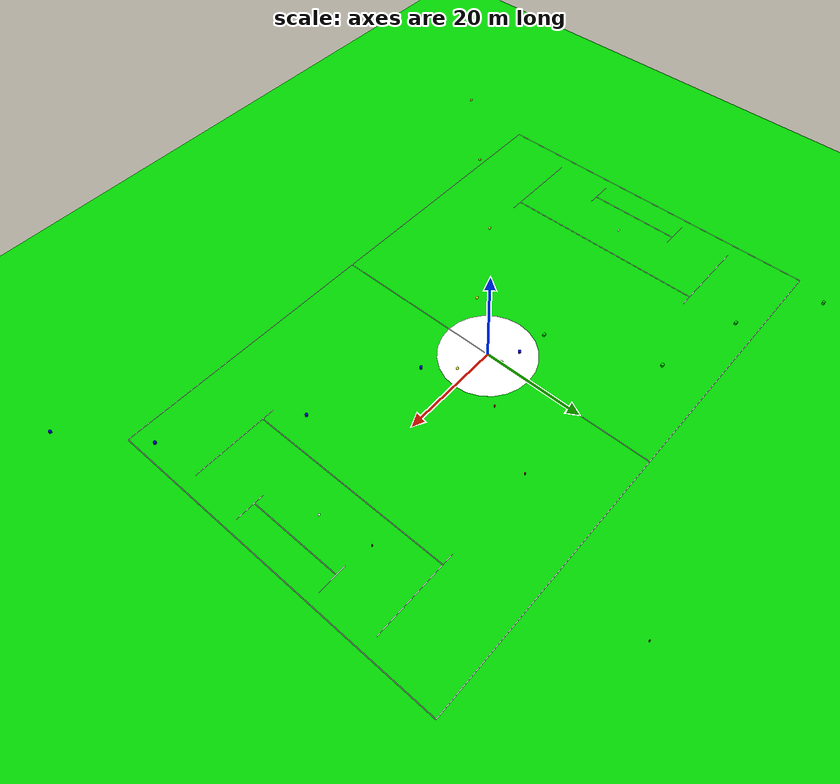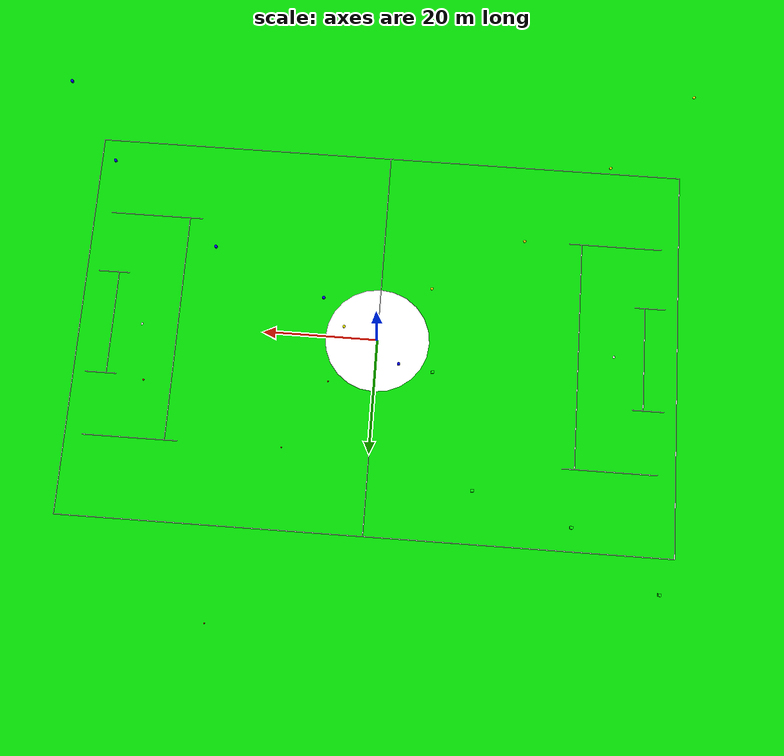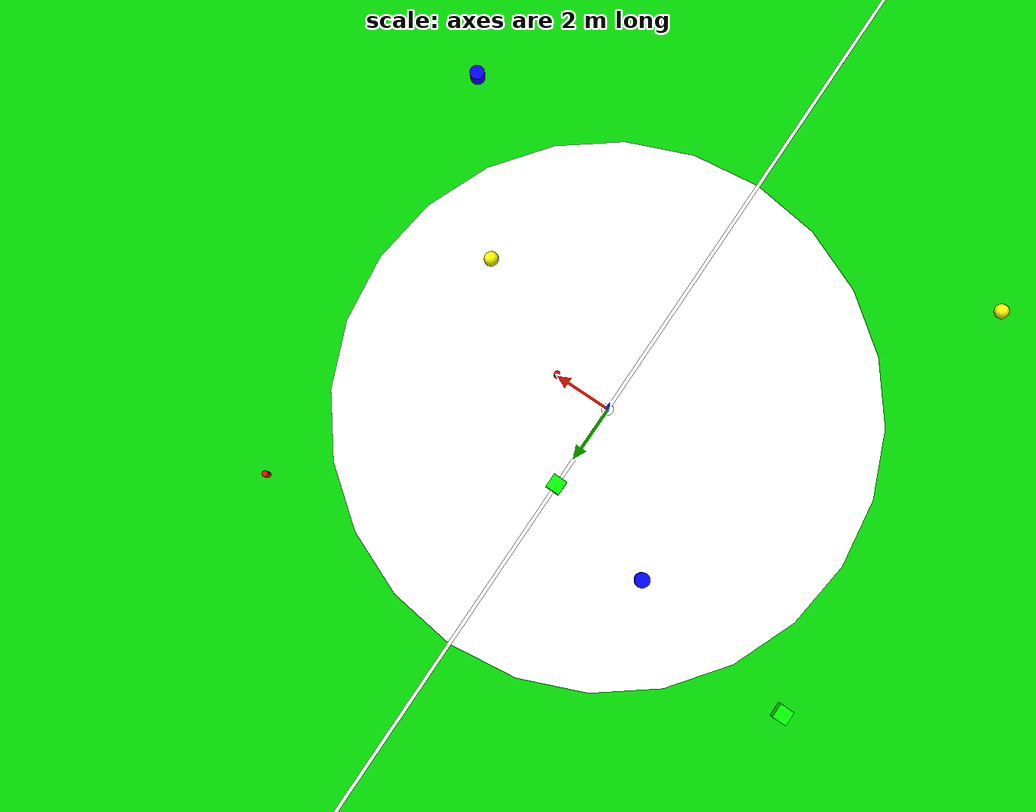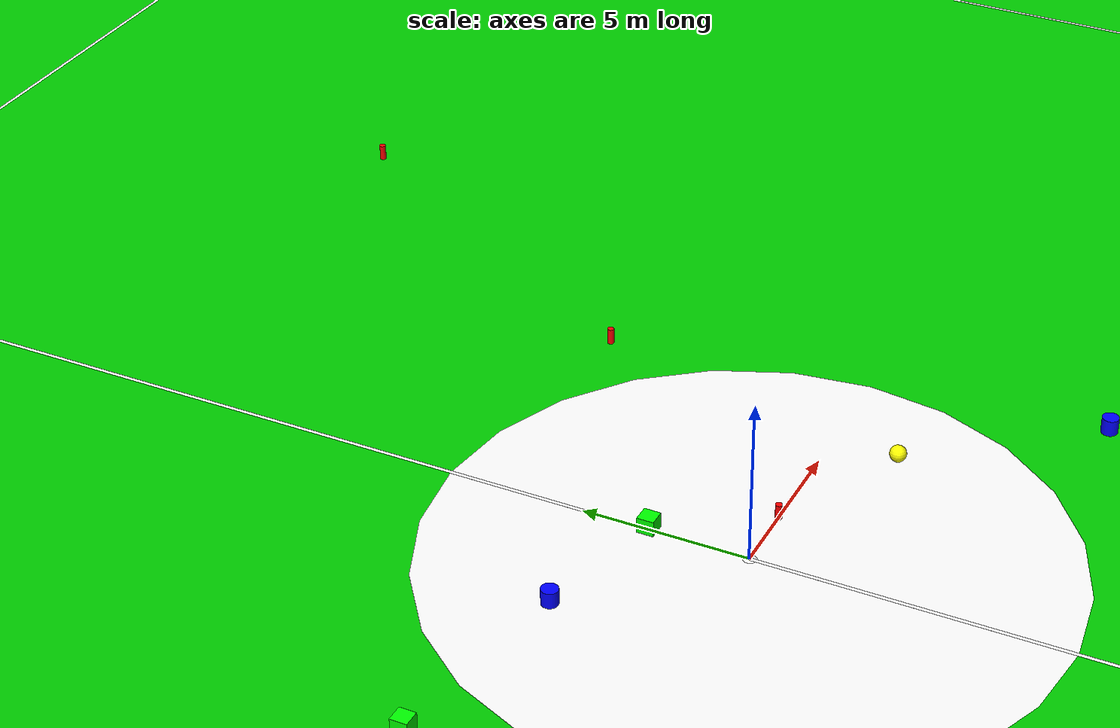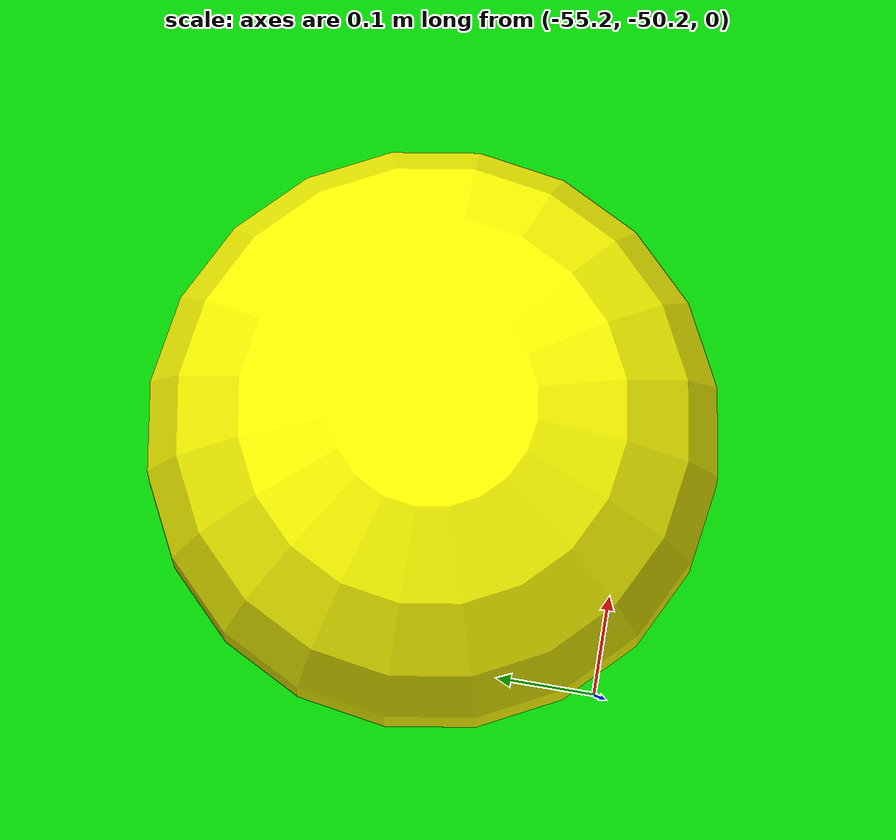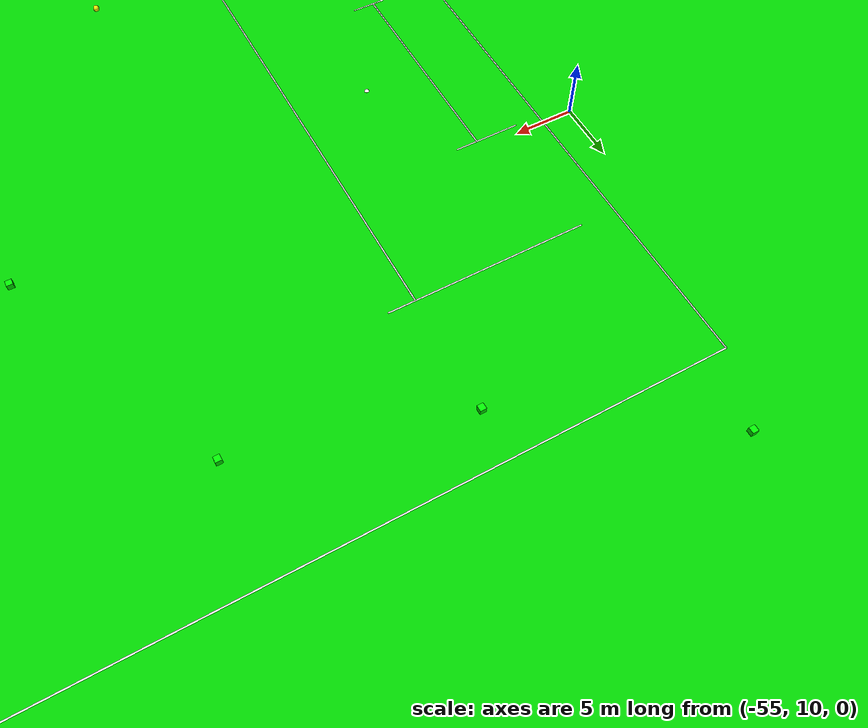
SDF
<?xml version="1.0" ?>
<sdf version="1.9">
  <world name="ros_gz">
    <physics name="1ms" type="ode">
      <max_step_size>0.001</max_step_size>
      <real_time_factor>1.0</real_time_factor>
    </physics>

    <!-- Spherical coordinates for GPS reference -->
    <spherical_coordinates>
      <surface_model>EARTH_WGS84</surface_model>
      <world_frame_orientation>ENU</world_frame_orientation>
      <latitude_deg>-22.8567</latitude_deg>
      <longitude_deg>-47.0589</longitude_deg>
      <elevation>580.0</elevation>
      <heading_deg>0.0</heading_deg>
    </spherical_coordinates>

    <plugin
      filename="ignition-gazebo-physics-system"
      name="ignition::gazebo::systems::Physics">
    </plugin>
    <plugin
      filename="ignition-gazebo-user-commands-system"
      name="ignition::gazebo::systems::UserCommands">
    </plugin>
    <plugin
      filename="ignition-gazebo-navsat-system"
      name="ignition::gazebo::systems::NavSat">
    </plugin>
    <plugin
      filename="ignition-gazebo-sensors-system"
      name="ignition::gazebo::systems::Sensors">
      <render_engine>ogre2</render_engine>
    </plugin>
    <plugin
      filename="ignition-gazebo-imu-system"
      name="gz::sim::systems::Imu">
    </plugin>
    <plugin
      filename="ignition-gazebo-magnetometer-system"
      name="gz::sim::systems::Magnetometer">
    </plugin>
    <plugin
      filename="ignition-gazebo-scene-broadcaster-system"
      name="ignition::gazebo::systems::SceneBroadcaster">
    </plugin>
    <plugin
      filename="gz-sim-physics-system"
      name="gz::sim::systems::Physics">
    </plugin>

    <gui fullscreen="0">

      <!-- 3D scene -->
      <plugin filename="GzScene3D" name="3D View">
        <ignition-gui>
          <title>3D View</title>
          <property type="bool" key="showTitleBar">false</property>
          <property type="string" key="state">docked</property>
        </ignition-gui>

        <engine>ogre2</engine>
        <scene>scene</scene>
        <ambient_light>0.4 0.4 0.4</ambient_light>
        <background_color>0.8 0.8 0.8</background_color>
        <camera_pose>-8 0 8 0 0.8 0</camera_pose>
      </plugin>

      <!-- World control -->
      <plugin filename="WorldControl" name="World control">
        <ignition-gui>
          <title>World control</title>
          <property type="bool" key="showTitleBar">false</property>
          <property type="bool" key="resizable">false</property>
          <property type="double" key="height">72</property>
          <property type="double" key="width">121</property>
          <property type="double" key="z">1</property>

          <property type="string" key="state">floating</property>
          <anchors target="3D View">
            <line own="left" target="left"/>
            <line own="bottom" target="bottom"/>
          </anchors>
        </ignition-gui>

        <play_pause>true</play_pause>
        <step>true</step>
        <start_paused>true</start_paused>
        <service>/world/ros_gz/control</service>
        <stats_topic>/world/ros_gz/stats</stats_topic>

      </plugin>

      <!-- World statistics -->
      <plugin filename="WorldStats" name="World stats">
        <ignition-gui>
          <title>World stats</title>
          <property type="bool" key="showTitleBar">false</property>
          <property type="bool" key="resizable">false</property>
          <property type="double" key="height">110</property>
          <property type="double" key="width">290</property>
          <property type="double" key="z">1</property>

          <property type="string" key="state">floating</property>
          <anchors target="3D View">
            <line own="right" target="right"/>
            <line own="bottom" target="bottom"/>
          </anchors>
        </ignition-gui>

        <sim_time>true</sim_time>
        <real_time>true</real_time>
        <real_time_factor>true</real_time_factor>
        <iterations>true</iterations>
        <topic>/world/ros_gz/stats</topic>
      </plugin>

      <plugin filename="ImageDisplay" name="Image Display">
        <ignition-gui>
          <title>Default: depth</title>
          <property key="width" type="double">400</property>
          <property key="height" type="double">315</property>
          <property key="state" type="string">floating</property>
          <anchors target="3D View">
            <line own="left" target="left"/>
            <line own="bottom" target="bottom"/>
          </anchors>
        </ignition-gui>
        <topic>kinect_depth/image</topic>
        <topic_picker>false</topic_picker>
      </plugin>

      <plugin filename="ImageDisplay" name="Image Display">
        <ignition-gui>
          <title>Default: RGB</title>
          <property key="width" type="double">400</property>
          <property key="height" type="double">315</property>
          <property key="state" type="string">floating</property>
          <anchors target="3D View">
            <line own="right" target="right"/>
            <line own="bottom" target="bottom"/>
          </anchors>
        </ignition-gui>
        <topic>kinect_rgb/image</topic>
        <topic_picker>false</topic_picker>
      </plugin>
    </gui>

    <light type="directional" name="sun">
      <cast_shadows>true</cast_shadows>
      <pose>0 0 10 0 0 0</pose>
      <diffuse>0.8 0.8 0.8 1</diffuse>
      <specular>0.2 0.2 0.2 1</specular>
      <attenuation>
        <range>1000</range>
        <constant>0.9</constant>
        <linear>0.01</linear>
        <quadratic>0.001</quadratic>
      </attenuation>
      <direction>-0.5 0.1 -0.9</direction>
    </light>

    <!-- FIFA Standard Football Field -->
    <model name="FIFA Football Field">
      <static>true</static>
      <link name="field">
        <pose>0 0 0.01 0 0 0</pose>
        <collision name="collision">
          <geometry>
            <plane>
              <normal>0 0 1</normal>
              <size>105 68</size>
            </plane>
          </geometry>
          <surface>
            <friction>
              <ode>
                <mu>100</mu>
                <mu2>50</mu2>
              </ode>
            </friction>
          </surface>
        </collision>
        <visual name="grass_field">
          <cast_shadows>false</cast_shadows>
          <geometry>
            <plane>
              <normal>0 0 1</normal>
              <size>105 68</size>
            </plane>
          </geometry>
          <material>
            <ambient>0 0.6 0 1</ambient>
            <diffuse>0 0.8 0 1</diffuse>
          </material>
        </visual>
        <!-- Sidelines -->
        <visual name="sideline_1">
          <pose>0 34 0.011 0 0 0</pose>
          <cast_shadows>false</cast_shadows>
          <geometry>
            <plane>
              <normal>0 0 1</normal>
              <size>105 0.12</size>
            </plane>
          </geometry>
          <material>
            <ambient>1 1 1 1</ambient>
            <diffuse>1 1 1 1</diffuse>
          </material>
        </visual>
        <visual name="sideline_2">
          <pose>0 -34 0.011 0 0 0</pose>
          <cast_shadows>false</cast_shadows>
          <geometry>
            <plane>
              <normal>0 0 1</normal>
              <size>105 0.12</size>
            </plane>
          </geometry>
          <material>
            <ambient>1 1 1 1</ambient>
            <diffuse>1 1 1 1</diffuse>
          </material>
        </visual>
        <!-- Goal lines -->
        <visual name="goal_line_1">
          <pose>-52.5 0 0.011 0 0 0</pose>
          <cast_shadows>false</cast_shadows>
          <geometry>
            <plane>
              <normal>0 0 1</normal>
              <size>0.12 68</size>
            </plane>
          </geometry>
          <material>
            <ambient>1 1 1 1</ambient>
            <diffuse>1 1 1 1</diffuse>
          </material>
        </visual>
        <visual name="goal_line_2">
          <pose>52.5 0 0.011 0 0 0</pose>
          <cast_shadows>false</cast_shadows>
          <geometry>
            <plane>
              <normal>0 0 1</normal>
              <size>0.12 68</size>
            </plane>
          </geometry>
          <material>
            <ambient>1 1 1 1</ambient>
            <diffuse>1 1 1 1</diffuse>
          </material>
        </visual>
        <!-- Center line -->
        <visual name="center_line">
          <pose>0 0 0.011 0 0 0</pose>
          <cast_shadows>false</cast_shadows>
          <geometry>
            <plane>
              <normal>0 0 1</normal>
              <size>0.12 68</size>
            </plane>
          </geometry>
          <material>
            <ambient>1 1 1 1</ambient>
            <diffuse>1 1 1 1</diffuse>
          </material>
        </visual>
        <!-- Center circle -->
        <visual name="center_circle">
          <pose>0 0 0.005 0 0 0</pose>
          <cast_shadows>false</cast_shadows>
          <geometry>
            <cylinder>
              <radius>9.15</radius>
              <length>0.0005</length>
            </cylinder>
          </geometry>
          <material>
            <ambient>1 1 1 1</ambient>
            <diffuse>1 1 1 1</diffuse>
          </material>
        </visual>
        <!-- Center point -->
        <visual name="center_point">
          <pose>0 0 0.01 0 0 0</pose>
          <cast_shadows>false</cast_shadows>
          <geometry>
            <cylinder>
              <radius>0.2</radius>
              <length>0.0005</length>
            </cylinder>
          </geometry>
          <material>
            <ambient>1 1 1 1</ambient>
            <diffuse>1 1 1 1</diffuse>
          </material>
        </visual>
        <!-- Penalty areas -->
        <visual name="penalty_area_1">
          <pose>-35.25 0 0.011 0 0 0</pose>
          <cast_shadows>false</cast_shadows>
          <geometry>
            <plane>
              <normal>0 0 1</normal>
              <size>0.12 40.3</size>
            </plane>
          </geometry>
          <material>
            <ambient>1 1 1 1</ambient>
            <diffuse>1 1 1 1</diffuse>
          </material>
        </visual>
        <visual name="penalty_area_1_top">
          <pose>-41.28 20.15 0.011 0 0 0</pose>
          <cast_shadows>false</cast_shadows>
          <geometry>
            <plane>
              <normal>0 0 1</normal>
              <size>16.5 0.12</size>
            </plane>
          </geometry>
          <material>
            <ambient>1 1 1 1</ambient>
            <diffuse>1 1 1 1</diffuse>
          </material>
        </visual>
        <visual name="penalty_area_1_bottom">
          <pose>-41.28 -20.15 0.011 0 0 0</pose>
          <cast_shadows>false</cast_shadows>
          <geometry>
            <plane>
              <normal>0 0 1</normal>
              <size>16.5 0.12</size>
            </plane>
          </geometry>
          <material>
            <ambient>1 1 1 1</ambient>
            <diffuse>1 1 1 1</diffuse>
          </material>
        </visual>
        <visual name="penalty_area_2">
          <pose>35.25 0 0.011 0 0 0</pose>
          <cast_shadows>false</cast_shadows>
          <geometry>
            <plane>
              <normal>0 0 1</normal>
              <size>0.12 40.3</size>
            </plane>
          </geometry>
          <material>
            <ambient>1 1 1 1</ambient>
            <diffuse>1 1 1 1</diffuse>
          </material>
        </visual>
        <visual name="penalty_area_2_top">
          <pose>41.28 20.15 0.011 0 0 0</pose>
          <cast_shadows>false</cast_shadows>
          <geometry>
            <plane>
              <normal>0 0 1</normal>
              <size>16.5 0.12</size>
            </plane>
          </geometry>
          <material>
            <ambient>1 1 1 1</ambient>
            <diffuse>1 1 1 1</diffuse>
          </material>
        </visual>
        <visual name="penalty_area_2_bottom">
          <pose>41.28 -20.15 0.011 0 0 0</pose>
          <cast_shadows>false</cast_shadows>
          <geometry>
            <plane>
              <normal>0 0 1</normal>
              <size>16.5 0.12</size>
            </plane>
          </geometry>
          <material>
            <ambient>1 1 1 1</ambient>
            <diffuse>1 1 1 1</diffuse>
          </material>
        </visual>
        <!-- Goal areas -->
        <visual name="goal_area_1">
          <pose>-46.75 0 0.011 0 0 0</pose>
          <cast_shadows>false</cast_shadows>
          <geometry>
            <plane>
              <normal>0 0 1</normal>
              <size>0.12 18.32</size>
            </plane>
          </geometry>
          <material>
            <ambient>1 1 1 1</ambient>
            <diffuse>1 1 1 1</diffuse>
          </material>
        </visual>
        <visual name="goal_area_1_top">
          <pose>-47.66 9.16 0.011 0 0 0</pose>
          <cast_shadows>false</cast_shadows>
          <geometry>
            <plane>
              <normal>0 0 1</normal>
              <size>5.5 0.12</size>
            </plane>
          </geometry>
          <material>
            <ambient>1 1 1 1</ambient>
            <diffuse>1 1 1 1</diffuse>
          </material>
        </visual>
        <visual name="goal_area_1_bottom">
          <pose>-47.66 -9.16 0.011 0 0 0</pose>
          <cast_shadows>false</cast_shadows>
          <geometry>
            <plane>
              <normal>0 0 1</normal>
              <size>5.5 0.12</size>
            </plane>
          </geometry>
          <material>
            <ambient>1 1 1 1</ambient>
            <diffuse>1 1 1 1</diffuse>
          </material>
        </visual>
        <visual name="goal_area_2">
          <pose>46.75 0 0.011 0 0 0</pose>
          <cast_shadows>false</cast_shadows>
          <geometry>
            <plane>
              <normal>0 0 1</normal>
              <size>0.12 18.32</size>
            </plane>
          </geometry>
          <material>
            <ambient>1 1 1 1</ambient>
            <diffuse>1 1 1 1</diffuse>
          </material>
        </visual>
        <visual name="goal_area_2_top">
          <pose>47.66 9.16 0.011 0 0 0</pose>
          <cast_shadows>false</cast_shadows>
          <geometry>
            <plane>
              <normal>0 0 1</normal>
              <size>5.5 0.12</size>
            </plane>
          </geometry>
          <material>
            <ambient>1 1 1 1</ambient>
            <diffuse>1 1 1 1</diffuse>
          </material>
        </visual>
        <visual name="goal_area_2_bottom">
          <pose>47.66 -9.16 0.011 0 0 0</pose>
          <cast_shadows>false</cast_shadows>
          <geometry>
            <plane>
              <normal>0 0 1</normal>
              <size>5.5 0.12</size>
            </plane>
          </geometry>
          <material>
            <ambient>1 1 1 1</ambient>
            <diffuse>1 1 1 1</diffuse>
          </material>
        </visual>
        <!-- Penalty spots -->
        <visual name="penalty_spot_1">
          <pose>-41.5 0 0.01 0 0 0</pose>
          <cast_shadows>false</cast_shadows>
          <geometry>
            <cylinder>
              <radius>0.2</radius>
              <length>0.0005</length>
            </cylinder>
          </geometry>
          <material>
            <ambient>1 1 1 1</ambient>
            <diffuse>1 1 1 1</diffuse>
          </material>
        </visual>
        <visual name="penalty_spot_2">
          <pose>41.5 0 0.01 0 0 0</pose>
          <cast_shadows>false</cast_shadows>
          <geometry>
            <cylinder>
              <radius>0.2</radius>
              <length>0.0005</length>
            </cylinder>
          </geometry>
          <material>
            <ambient>1 1 1 1</ambient>
            <diffuse>1 1 1 1</diffuse>
          </material>
        </visual>
      </link>
    </model>
    <!-- Objetos sortidos -->
    <model name="cone_2">
      <pose>15 20 0.25 0 0 0</pose>
      <link name="link">
      <collision name="collision">
        <geometry>
        <cylinder>
          <radius>0.1</radius>
          <length>0.5</length>
        </cylinder>
        </geometry>
      </collision>
      <visual name="visual">
        <geometry>
        <cylinder>
          <radius>0.1</radius>
          <length>0.5</length>
        </cylinder>
        </geometry>
        <material>
        <ambient>1 0 0 1</ambient>
        <diffuse>1 0 0 1</diffuse>
        </material>
      </visual>
      </link>
    </model>
    <model name="box_2">
      <pose>-18 25 0.25 0 0 0</pose>
      <link name="link">
      <collision name="collision">
        <geometry>
        <box>
          <size>0.5 0.5 0.5</size>
        </box>
        </geometry>
      </collision>
      <visual name="visual">
        <geometry>
        <box>
          <size>0.5 0.5 0.5</size>
        </box>
        </geometry>
        <material>
        <ambient>0 1 0 1</ambient>
        <diffuse>0 1 0 1</diffuse>
        </material>
      </visual>
      </link>
    </model>
    <model name="cylinder_2">
      <pose>30 -15 0.25 0 0 0</pose>
      <link name="link">
      <collision name="collision">
        <geometry>
        <cylinder>
          <radius>0.25</radius>
          <length>0.5</length>
        </cylinder>
        </geometry>
      </collision>
      <visual name="visual">
        <geometry>
        <cylinder>
          <radius>0.25</radius>
          <length>0.5</length>
        </cylinder>
        </geometry>
        <material>
        <ambient>0 0 1 1</ambient>
        <diffuse>0 0 1 1</diffuse>
        </material>
      </visual>
      </link>
    </model>
    <model name="sphere_2">
      <pose>-25 -20 0.25 0 0 0</pose>
      <link name="link">
      <collision name="collision">
        <geometry>
        <sphere>
          <radius>0.25</radius>
        </sphere>
        </geometry>
      </collision>
      <visual name="visual">
        <geometry>
        <sphere>
          <radius>0.25</radius>
        </sphere>
        </geometry>
        <material>
        <ambient>1 1 0 1</ambient>
        <diffuse>1 1 0 1</diffuse>
        </material>
      </visual>
      </link>
    </model>
    <model name="cone_3">
      <pose>40 10 0.25 0 0 0</pose>
      <link name="link">
      <collision name="collision">
        <geometry>
        <cylinder>
          <radius>0.1</radius>
          <length>0.5</length>
        </cylinder>
        </geometry>
      </collision>
      <visual name="visual">
        <geometry>
        <cylinder>
          <radius>0.1</radius>
          <length>0.5</length>
        </cylinder>
        </geometry>
        <material>
        <ambient>1 0 0 1</ambient>
        <diffuse>1 0 0 1</diffuse>
        </material>
      </visual>
      </link>
    </model>
    <model name="box_3">
      <pose>-35 30 0.25 0 0 0</pose>
      <link name="link">
      <collision name="collision">
        <geometry>
        <box>
          <size>0.5 0.5 0.5</size>
        </box>
        </geometry>
      </collision>
      <visual name="visual">
        <geometry>
        <box>
          <size>0.5 0.5 0.5</size>
        </box>
        </geometry>
        <material>
        <ambient>0 1 0 1</ambient>
        <diffuse>0 1 0 1</diffuse>
        </material>
      </visual>
      </link>
    </model>
    <model name="cylinder_3">
      <pose>50 -30 0.25 0 0 0</pose>
      <link name="link">
      <collision name="collision">
        <geometry>
        <cylinder>
          <radius>0.25</radius>
          <length>0.5</length>
        </cylinder>
        </geometry>
      </collision>
      <visual name="visual">
        <geometry>
        <cylinder>
          <radius>0.25</radius>
          <length>0.5</length>
        </cylinder>
        </geometry>
        <material>
        <ambient>0 0 1 1</ambient>
        <diffuse>0 0 1 1</diffuse>
        </material>
      </visual>
      </link>
    </model>
    <model name="sphere_3">
      <pose>-40 -35 0.25 0 0 0</pose>
      <link name="link">
      <collision name="collision">
        <geometry>
        <sphere>
          <radius>0.25</radius>
        </sphere>
        </geometry>
      </collision>
      <visual name="visual">
        <geometry>
        <sphere>
          <radius>0.25</radius>
        </sphere>
        </geometry>
        <material>
        <ambient>1 1 0 1</ambient>
        <diffuse>1 1 0 1</diffuse>
        </material>
      </visual>
      </link>
    </model>
    <model name="cone_4">
      <pose>25 50 0.25 0 0 0</pose>
      <link name="link">
      <collision name="collision">
      <geometry>
      <cylinder>
        <radius>0.1</radius>
        <length>0.5</length>
      </cylinder>
      </geometry>
      </collision>
      <visual name="visual">
      <geometry>
      <cylinder>
        <radius>0.1</radius>
        <length>0.5</length>
      </cylinder>
      </geometry>
      <material>
      <ambient>1 0 0 1</ambient>
      <diffuse>1 0 0 1</diffuse>
      </material>
      </visual>
      </link>
    </model>
    <model name="box_4">
      <pose>-50 40 0.25 0 0 0</pose>
      <link name="link">
      <collision name="collision">
      <geometry>
      <box>
        <size>0.5 0.5 0.5</size>
      </box>
      </geometry>
      </collision>
      <visual name="visual">
      <geometry>
      <box>
        <size>0.5 0.5 0.5</size>
      </box>
      </geometry>
      <material>
      <ambient>0 1 0 1</ambient>
      <diffuse>0 1 0 1</diffuse>
      </material>
      </visual>
      </link>
    </model>
    <model name="cylinder_4">
      <pose>60 -45 0.25 0 0 0</pose>
      <link name="link">
      <collision name="collision">
      <geometry>
      <cylinder>
        <radius>0.25</radius>
        <length>0.5</length>
      </cylinder>
      </geometry>
      </collision>
      <visual name="visual">
      <geometry>
      <cylinder>
        <radius>0.25</radius>
        <length>0.5</length>
      </cylinder>
      </geometry>
      <material>
      <ambient>0 0 1 1</ambient>
      <diffuse>0 0 1 1</diffuse>
      </material>
      </visual>
      </link>
    </model>
    <model name="sphere_4">
      <pose>-55 -50 0.25 0 0 0</pose>
      <link name="link">
      <collision name="collision">
      <geometry>
      <sphere>
      <radius>0.25</radius>
      </sphere>
      </geometry>
      </collision>
      <visual name="visual">
      <geometry>
      <sphere>
      <radius>0.25</radius>
      </sphere>
      </geometry>
      <material>
      <ambient>1 1 0 1</ambient>
      <diffuse>1 1 0 1</diffuse>
      </material>
      </visual>
      </link>
    </model>
    <!-- Objetos próximos da origem (2 a 10 metros) -->
    <model name="cone_near_1">
      <pose>2 0 0.25 0 0 0</pose>
      <link name="link">
      <collision name="collision">
        <geometry>
        <cylinder>
          <radius>0.1</radius>
          <length>0.5</length>
        </cylinder>
        </geometry>
      </collision>
      <visual name="visual">
        <geometry>
        <cylinder>
          <radius>0.1</radius>
          <length>0.5</length>
        </cylinder>
        </geometry>
        <material>
        <ambient>1 0 0 1</ambient>
        <diffuse>1 0 0 1</diffuse>
        </material>
      </visual>
      </link>
    </model>
    <model name="box_near_1">
      <pose>0 3 0.25 0 0 0</pose>
      <link name="link">
      <collision name="collision">
        <geometry>
        <box>
          <size>0.5 0.5 0.5</size>
        </box>
        </geometry>
      </collision>
      <visual name="visual">
        <geometry>
        <box>
          <size>0.5 0.5 0.5</size>
        </box>
        </geometry>
        <material>
        <ambient>0 1 0 1</ambient>
        <diffuse>0 1 0 1</diffuse>
        </material>
      </visual>
      </link>
    </model>
    <model name="cylinder_near_1">
      <pose>-4 4 0.25 0 0 0</pose>
      <link name="link">
      <collision name="collision">
        <geometry>
        <cylinder>
          <radius>0.25</radius>
          <length>0.5</length>
        </cylinder>
        </geometry>
      </collision>
      <visual name="visual">
        <geometry>
        <cylinder>
          <radius>0.25</radius>
          <length>0.5</length>
        </cylinder>
        </geometry>
        <material>
        <ambient>0 0 1 1</ambient>
        <diffuse>0 0 1 1</diffuse>
        </material>
      </visual>
      </link>
    </model>
    <model name="sphere_near_1">
      <pose>6 -2 0.25 0 0 0</pose>
      <link name="link">
      <collision name="collision">
        <geometry>
        <sphere>
          <radius>0.25</radius>
        </sphere>
        </geometry>
      </collision>
      <visual name="visual">
        <geometry>
        <sphere>
          <radius>0.25</radius>
        </sphere>
        </geometry>
        <material>
        <ambient>1 1 0 1</ambient>
        <diffuse>1 1 0 1</diffuse>
        </material>
      </visual>
      </link>
    </model>
    <model name="cone_near_2">
      <pose>8 8 0.25 0 0 0</pose>
      <link name="link">
      <collision name="collision">
        <geometry>
        <cylinder>
          <radius>0.1</radius>
          <length>0.5</length>
        </cylinder>
        </geometry>
      </collision>
      <visual name="visual">
        <geometry>
        <cylinder>
          <radius>0.1</radius>
          <length>0.5</length>
        </cylinder>
        </geometry>
        <material>
        <ambient>1 0 0 1</ambient>
        <diffuse>1 0 0 1</diffuse>
        </material>
      </visual>
      </link>
    </model>
    <model name="box_near_2">
      <pose>-10 5 0.25 0 0 0</pose>
      <link name="link">
      <collision name="collision">
        <geometry>
        <box>
          <size>0.5 0.5 0.5</size>
        </box>
        </geometry>
      </collision>
      <visual name="visual">
        <geometry>
        <box>
          <size>0.5 0.5 0.5</size>
        </box>
        </geometry>
        <material>
        <ambient>0 1 0 1</ambient>
        <diffuse>0 1 0 1</diffuse>
        </material>
      </visual>
      </link>
    </model>
    <model name="cylinder_near_2">
      <pose>10 -7 0.25 0 0 0</pose>
      <link name="link">
      <collision name="collision">
        <geometry>
        <cylinder>
          <radius>0.25</radius>
          <length>0.5</length>
        </cylinder>
        </geometry>
      </collision>
      <visual name="visual">
        <geometry>
        <cylinder>
          <radius>0.25</radius>
          <length>0.5</length>
        </cylinder>
        </geometry>
        <material>
        <ambient>0 0 1 1</ambient>
        <diffuse>0 0 1 1</diffuse>
        </material>
      </visual>
      </link>
    </model>
    <model name="sphere_near_2">
      <pose>-9 -10 0.25 0 0 0</pose>
      <link name="link">
      <collision name="collision">
        <geometry>
        <sphere>
          <radius>0.25</radius>
        </sphere>
        </geometry>
      </collision>
      <visual name="visual">
        <geometry>
        <sphere>
          <radius>0.25</radius>
        </sphere>
        </geometry>
        <material>
        <ambient>1 1 0 1</ambient>
        <diffuse>1 1 0 1</diffuse>
        </material>
      </visual>
      </link>
    </model>
  </world>
</sdf>
